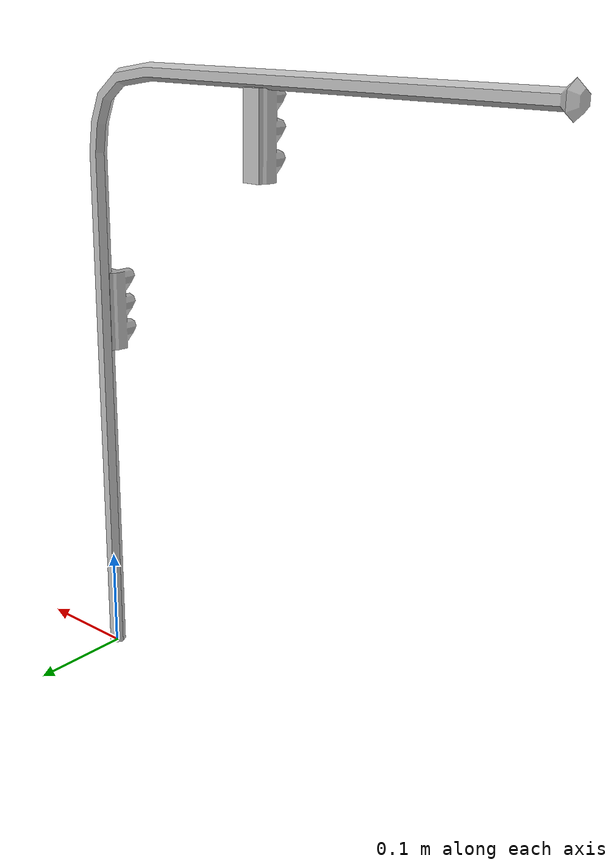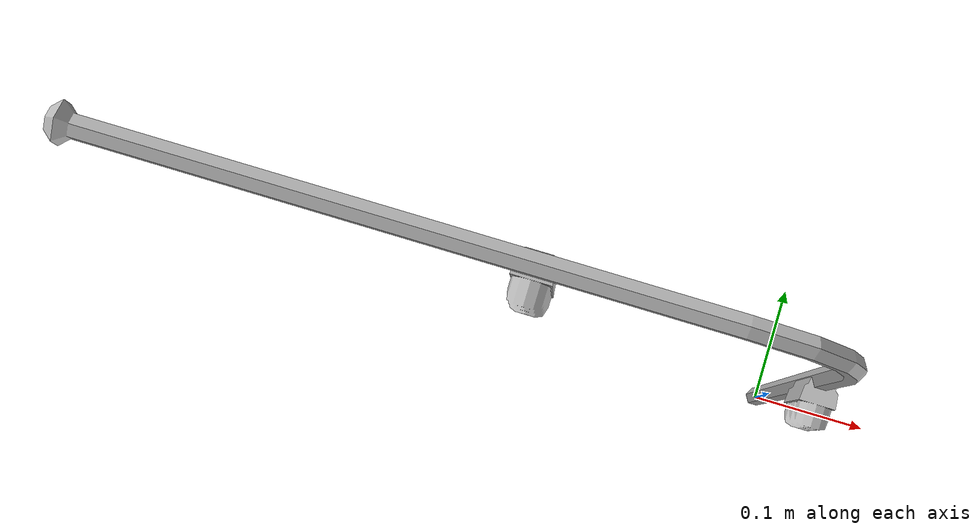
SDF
<?xml version="1.0" ?>
<sdf version="1.6">
  <model name="stop_light_post">
    <static>true</static>
    <link name="link">

      <collision name="post">
        <geometry>
          <mesh>
            <uri>model://stop_light_post/meshes/stop_light_post.obj</uri>
            <scale>0.001 0.001 0.001</scale>
          </mesh>
        </geometry>
      </collision>

      <visual name="post">
        <geometry>
          <mesh>
            <uri>model://stop_light_post/meshes/stop_light_post.obj</uri>
            <scale>0.001 0.001 0.001</scale>
          </mesh>
        </geometry>
      </visual>

    </link>

    <include>
      <name>right_light</name>
      <pose>0 -0.005 0.4 0 0 0</pose>
      <uri>model://stop_light_small</uri>
    </include>

    <include>
      <name>center_light</name>
      <pose>-0.2 0.004 0.582 0 0 0</pose>
      <uri>model://stop_light_small</uri>
    </include>

  </model>
</sdf>

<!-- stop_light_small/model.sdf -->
<sdf version="1.6">
  <model name="stop_light">

    <static>true</static>

    <!-- this pose can be overriden when including the light on another model -->
    <pose>0 0 1.0 0 0 0</pose>

    <link name="link">

      <collision name="collision">
        <geometry>
          <mesh>
            <uri>model://stop_light/meshes/stop_light.obj</uri>
            <scale>0.001 0.001 0.001</scale>
          </mesh>
        </geometry>
      </collision>

      <visual name="frame">
        <geometry>
          <mesh>
            <uri>model://stop_light/meshes/stop_light.obj</uri>
            <scale>0.001 0.001 0.001</scale>
          </mesh>
        </geometry>
      </visual>

      <visual name="red">
        <pose>-0.0001123 -0.0082251 -0.0147514 0 0 0</pose>
        <geometry>
          <sphere>
            <radius>0.01012</radius>
          </sphere>
        </geometry>
        <material>
          <script>
            <uri>model://stop_light/materials/scripts/</uri>
            <uri>model://stop_light/materials/textures/</uri>
            <name>StopLight/Light</name>
          </script>
          <ambient>1 0 0 1</ambient>
          <specular>1 0 0 1</specular>
          <!-- Turn a light on by uncommenting emissive -->
        </material>
      </visual>

      <visual name="yellow">
        <pose>-0.0001123 -0.0082251 -0.0402 0 0 0</pose>
        <geometry>
          <sphere>
            <radius>0.01012</radius>
          </sphere>
        </geometry>
        <material>
          <script>
            <uri>model://stop_light/materials/scripts/</uri>
            <uri>model://stop_light/materials/textures/</uri>
            <name>StopLight/Light</name>
          </script>
          <ambient>1 1 0 1</ambient>
          <specular>1 1 0 1</specular>
        </material>
      </visual>

      <visual name="green">
        <pose>-0.0001123 -0.0082251 -0.0655 0 0 0</pose>
        <geometry>
          <sphere>
            <radius>0.01012</radius>
          </sphere>
        </geometry>
        <material>
          <script>
            <uri>model://stop_light/materials/scripts/</uri>
            <uri>model://stop_light/materials/textures/</uri>
            <name>StopLight/Light</name>
          </script>
          <ambient>0 1 0 1</ambient>
          <specular>0 1 0 1</specular>
        </material>
      </visual>

    </link>
  </model>
</sdf>
